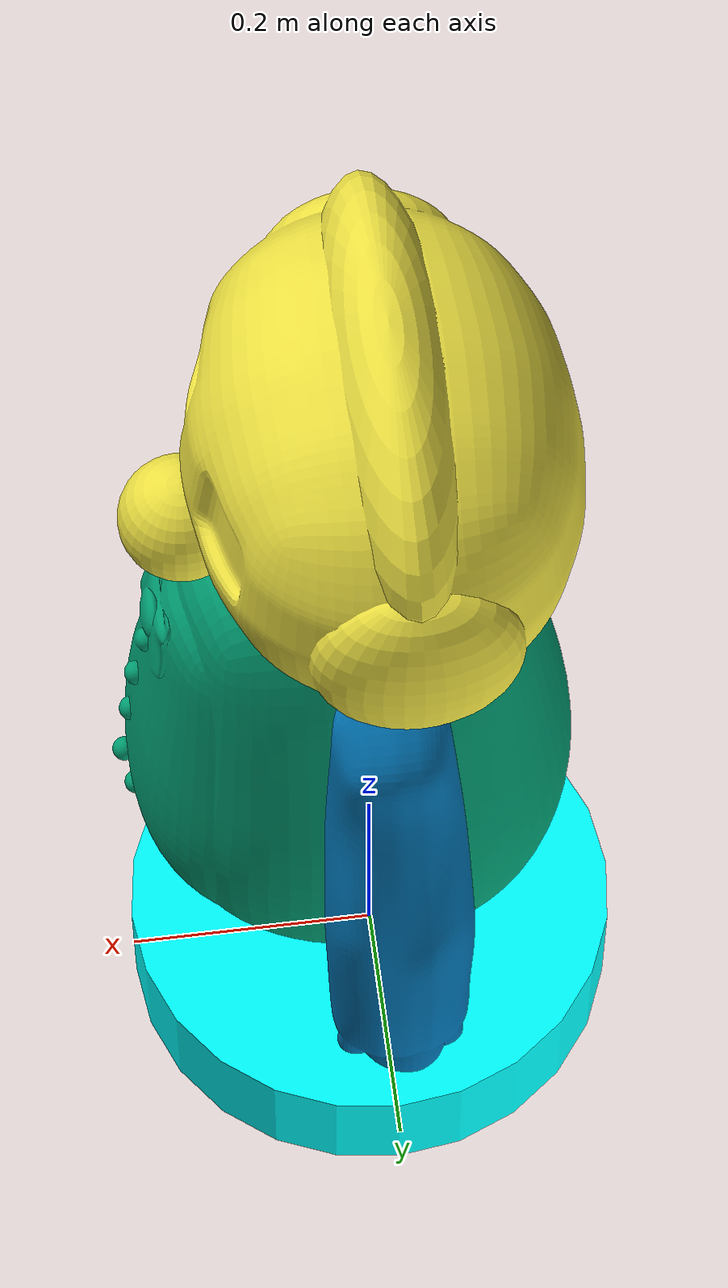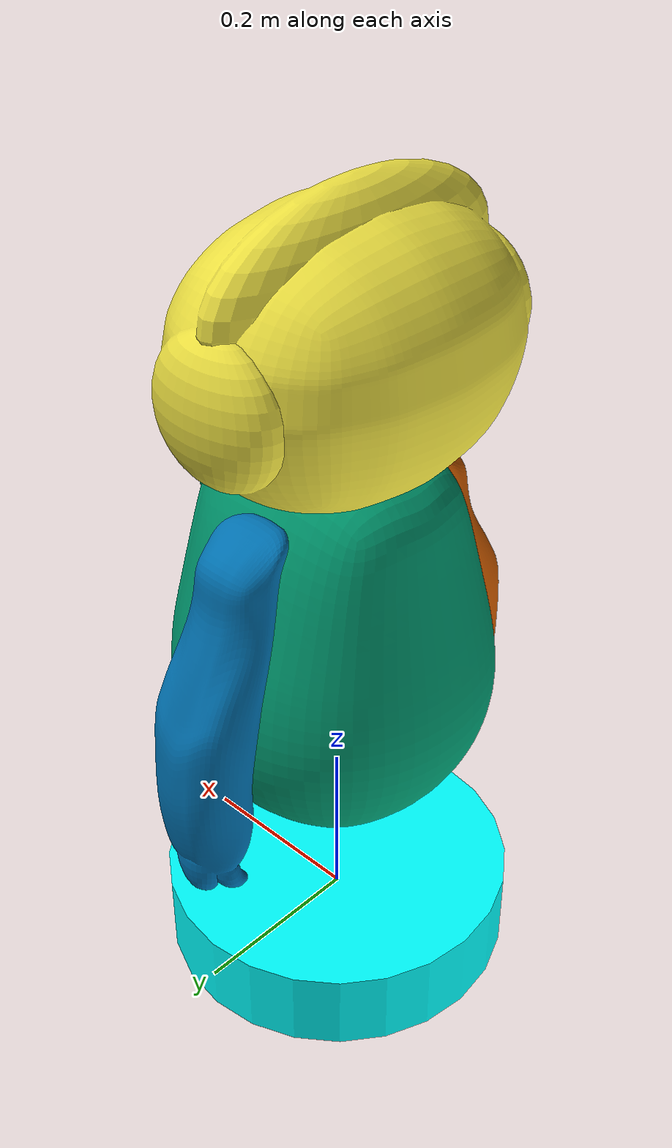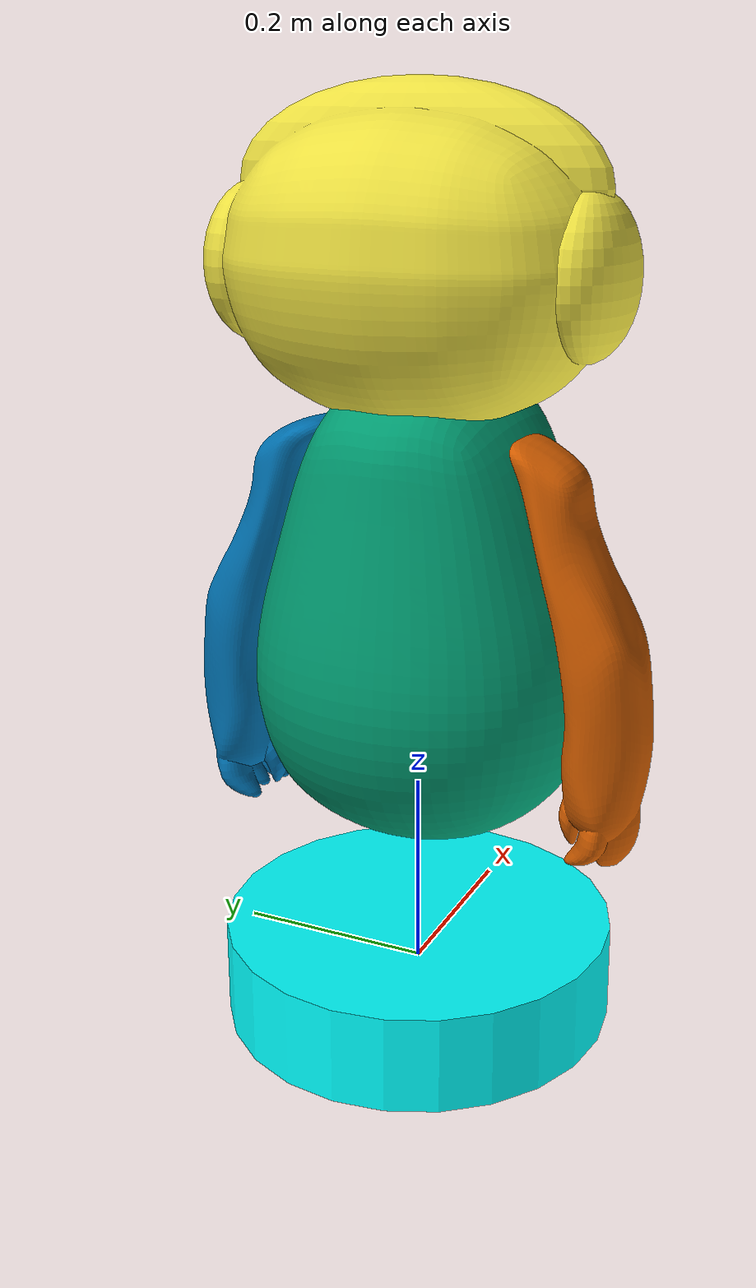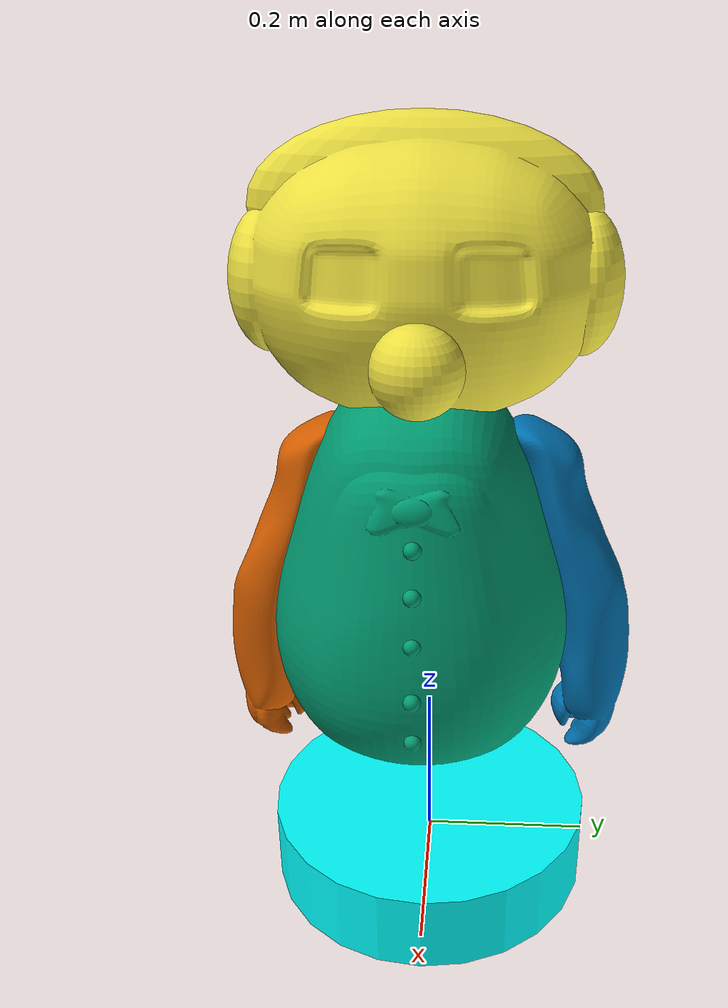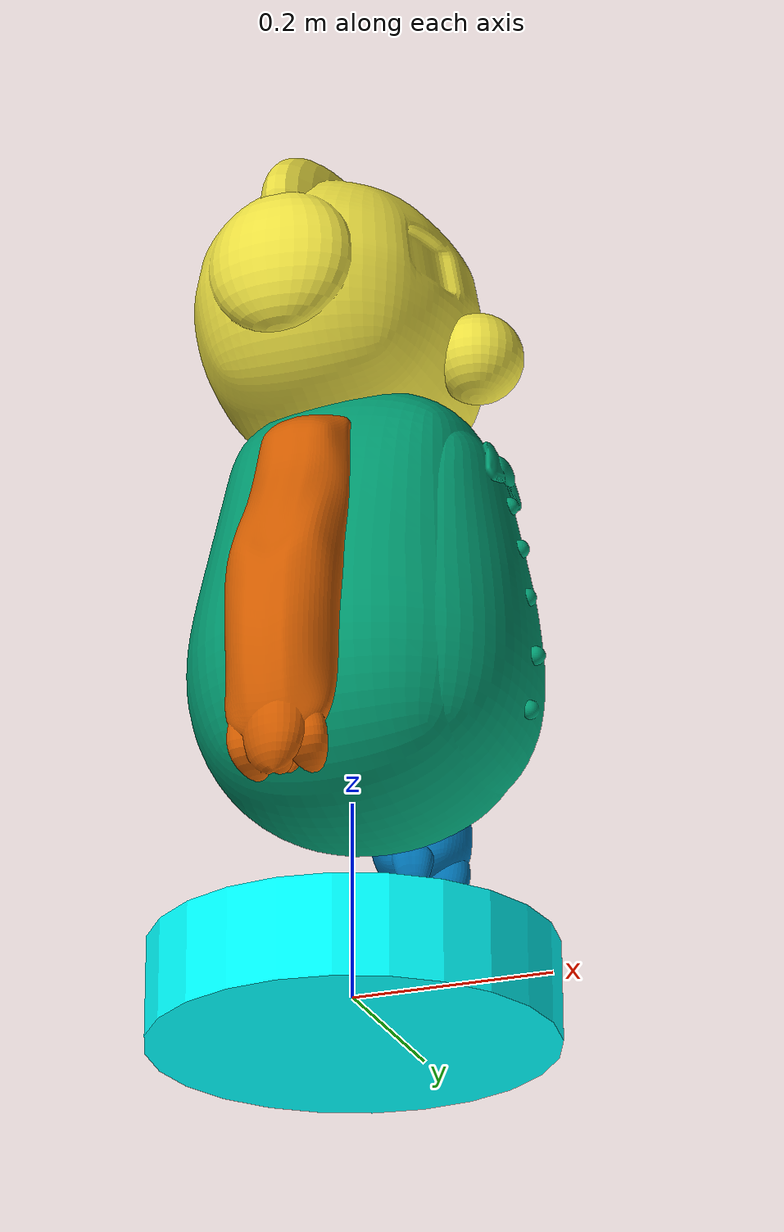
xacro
<?xml version="1.0"?>
<robot name="brobor" xmlns:xacro="http://ros.org/wiki/xacro">

<xacro:include filename="include.xacro" />

  <link name="world" />
  <link name="base_link">
    <visual>
      <origin rpy="0 0 0" xyz="0 0 0" />
      <geometry>
        <cylinder length="0.1" radius="0.2" />
      </geometry>
      <material name="Cyan">
        <color rgba="0 1.0 1.0 1.0"/>
      </material>
    </visual>

    <inertial>
      <origin xyz="0 0 0.05" rpy="0 0 0"/>
      <mass value="0.1" />
      <inertia ixx="0.0" ixy="0.0" ixz="0.0" iyy="0.0" iyz="0.0" izz="0.0" />
    </inertial>
  </link>

  <joint name="fixed" type="fixed">
    <parent link="world" />
    <child link="base_link" />
  </joint>

  <link name="link_1">
    <visual>
      <geometry>
        <mesh filename="file://$(find ${description_package})/meshes/visual/Body.stl " scale="0.07 0.07 0.07"/>
      </geometry>
      <origin rpy="0 0 1.5708" xyz="-0.32 -0.02 -0.08" />
    </visual>

    <inertial>
      <origin xyz="0 0 0.05" rpy="0 0 0"/>
      <mass value="0.1" />
      <inertia ixx="0.0" ixy="0.0" ixz="0.0" iyy="0.0" iyz="0.0" izz="0.0" />
    </inertial>

  </link>
    <joint name="joint_1" type="revolute">
    <parent link="base_link" />
    <child link="link_1" />
    <origin xyz="0 0 0.35" rpy="0 0 0" />
    <axis xyz="0 0 1" />
    <limit lower="-1.57" upper="1.57" effort="0" velocity="0.5" />
  </joint>

  <link name="link_2">
    <visual>
      <geometry>
        <mesh filename="file://$(find ${description_package})/meshes/visual/head.stl " scale="0.07 0.07 0.07"/>
      </geometry>
      <origin rpy="0 0 0" xyz="-0.02 0.35 -0.40"/>
    </visual>
    <inertial>
      <origin xyz="0 0 0.05" rpy="0 0 0"/>
      <mass value="0.1" />
      <inertia ixx="0.0" ixy="0.0" ixz="0.0" iyy="0.0" iyz="0.0" izz="0.0" />
    </inertial>

  </link>
  <joint name="joint_2" type="revolute">
    <parent link="link_1" />
    <child link="link_2" />
    <origin xyz="0 0 0.3" rpy="0 0 1.57" />
    <axis xyz="1 0 0" />
    <limit lower="-1.57" upper="1.57" effort="0" velocity="0.5" />
  </joint>

  <link name="link_3">
    <visual>
      <geometry>
        <mesh filename="file://$(find ${description_package})/meshes/visual/arm.stl " scale="0.07 0.07 0.07"/>
      </geometry>
      <origin rpy="0 0 -1.5708" xyz="0.29 -0.25 -0.255"/>
    </visual>

    <inertial>
      <origin xyz="0 0 0.05" rpy="0 0 0"/>
      <mass value="0.1" />
      <inertia ixx="0.0" ixy="0.0" ixz="0.0" iyy="0.0" iyz="0.0" izz="0.0" />
    </inertial>
  </link>

  <joint name="joint_3" type="revolute">
    <parent link="link_1" />
    <child link="link_3" />
    <origin xyz="0 0.25 0.15" rpy="0 0 0" />
    <axis xyz="0 1 0" />
    <limit lower="-1.57" upper="1.57" effort="0" velocity="0.5" />
  </joint>

  <link name="link_4">
    <visual>
      <geometry>
        <mesh filename="file://$(find ${description_package})/meshes/visual/arm.stl " scale="0.07 0.07 0.07"/>
      </geometry>

      <origin rpy="0 0 1.5708" xyz="-0.29 0.25 -0.255"/>
    </visual>
    <inertial>
      <origin xyz="0 0 0.05" rpy="0 0 0"/>
      <mass value="0.1" />
      <inertia ixx="0.0" ixy="0.0" ixz="0.0" iyy="0.0" iyz="0.0" izz="0.0" />
    </inertial>
  </link>

  <joint name="joint_4" type="revolute">
    <parent link="link_1" />
    <child link="link_4" />
    <origin xyz="0 -0.25 0.15" rpy="0 0 0" />
    <axis xyz="0 1 0" />
    <limit lower="-1.57" upper="1.57" effort="0" velocity="0.5" />
  </joint>

 <xacro:include filename="gazebo.xacro" />

</robot>

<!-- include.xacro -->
<robot xmlns:xacro="http://www.ros.org/wiki/xacro" >

  <xacro:property name="description_package" value="brobot_Gazebo"/>

  <material name="white">
      <color rgba="1 1 1 1"/>
  </material>

  <material name="orange">
      <color rgba="1 0.3 0.1 1"/>
  </material>

  <material name="blue">
      <color rgba="0.2 0.2 1 1"/>
  </material>

</robot>
